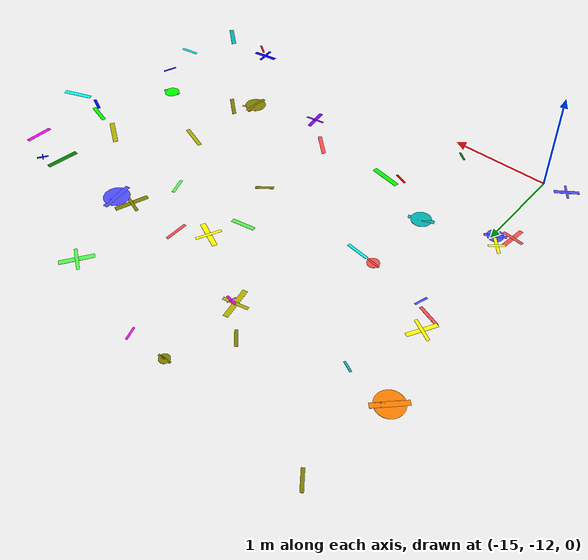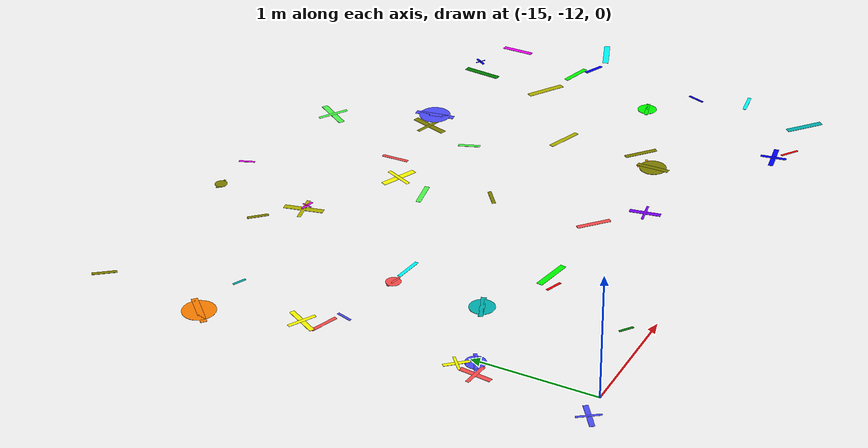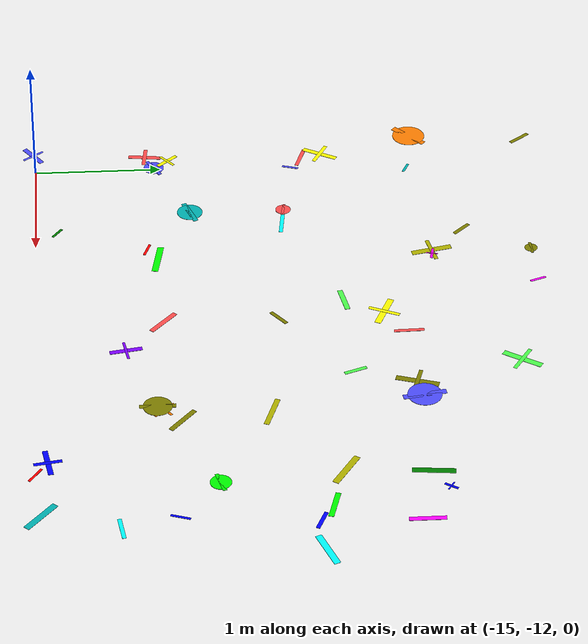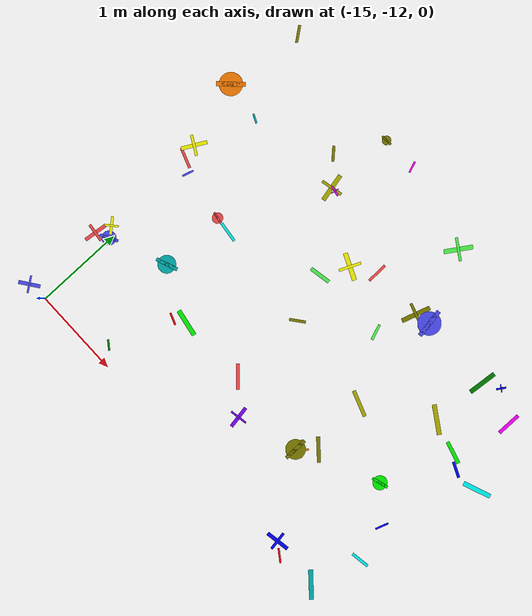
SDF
<sdf version="1.6">
 <world name="default">
  <model name="letter_T_21">
   <static>true</static>
   <pose>-15.23 -12.02 0.009 0 0 3.767</pose>
   <link name="link">
    <visual name="visual">
     <geometry><box><size>0.24 0.04 0.002</size></box></geometry>
     <material>
      <ambient>0.3 0.3 1.0 1</ambient>
      <diffuse>0.3 0.3 1.0 1</diffuse>
      <specular>0.1 0.1 0.1 1</specular>
     </material>
    </visual>
    <visual name="visual2">
     <pose>0 0 0.001 0 0 1.57</pose>
     <geometry><box><size>0.19 0.02 0.001</size></box></geometry>
     <material><ambient>0.3 0.3 1.0 1</ambient><diffuse>0.3 0.3 1.0 1</diffuse></material>
    </visual>
   </link>
  </model>
  <model name="letter_G_23">
   <static>true</static>
   <pose>-15.02 -11.05 0.003 0 0 0.506</pose>
   <link name="link">
    <visual name="visual">
     <geometry><box><size>0.21 0.03 0.002</size></box></geometry>
     <material>
      <ambient>0.3 0.3 1.0 1</ambient>
      <diffuse>0.3 0.3 1.0 1</diffuse>
      <specular>0.1 0.1 0.1 1</specular>
     </material>
    </visual>
    <visual name="visual2">
     <geometry><cylinder><radius>0.08</radius><length>0.002</length></cylinder></geometry>
     <material><ambient>0.3 0.3 1.0 1</ambient><diffuse>0.3 0.3 1.0 1</diffuse></material>
    </visual>
   </link>
  </model>
  <model name="letter_F_24">
   <static>true</static>
   <pose>-15.16 -11.12 0.011 0 0 1.458</pose>
   <link name="link">
    <visual name="visual">
     <geometry><box><size>0.26 0.04 0.002</size></box></geometry>
     <material>
      <ambient>1.0 0.3 0.3 1</ambient>
      <diffuse>1.0 0.3 0.3 1</diffuse>
      <specular>0.1 0.1 0.1 1</specular>
     </material>
    </visual>
    <visual name="visual2">
     <pose>0 0 0.001 0 0 1.57</pose>
     <geometry><box><size>0.21 0.03 0.001</size></box></geometry>
     <material><ambient>1.0 0.3 0.3 1</ambient><diffuse>1.0 0.3 0.3 1</diffuse></material>
    </visual>
   </link>
  </model>
  <model name="letter_A_25">
   <static>true</static>
   <pose>-15.10 -10.94 0.011 0 0 5.431</pose>
   <link name="link">
    <visual name="visual">
     <geometry><box><size>0.20 0.03 0.002</size></box></geometry>
     <material>
      <ambient>1.0 1.0 0.0 1</ambient>
      <diffuse>1.0 1.0 0.0 1</diffuse>
      <specular>0.1 0.1 0.1 1</specular>
     </material>
    </visual>
    <visual name="visual2">
     <pose>0 0 0.001 0 0 1.57</pose>
     <geometry><box><size>0.16 0.02 0.001</size></box></geometry>
     <material><ambient>1.0 1.0 0.0 1</ambient><diffuse>1.0 1.0 0.0 1</diffuse></material>
    </visual>
   </link>
  </model>
  <model name="letter_L_26">
   <static>true</static>
   <pose>-15.14 -9.70 0.007 0 0 4.216</pose>
   <link name="link">
    <visual name="visual">
     <geometry><box><size>0.29 0.04 0.002</size></box></geometry>
     <material>
      <ambient>1.0 1.0 0.0 1</ambient>
      <diffuse>1.0 1.0 0.0 1</diffuse>
      <specular>0.1 0.1 0.1 1</specular>
     </material>
    </visual>
    <visual name="visual2">
     <pose>0 0 0.001 0 0 1.57</pose>
     <geometry><box><size>0.23 0.03 0.001</size></box></geometry>
     <material><ambient>1.0 1.0 0.0 1</ambient><diffuse>1.0 1.0 0.0 1</diffuse></material>
    </visual>
   </link>
  </model>
  <model name="letter_Y_27">
   <static>true</static>
   <pose>-14.96 -9.95 0.011 0 0 4.426</pose>
   <link name="link">
    <visual name="visual">
     <geometry><box><size>0.13 0.02 0.002</size></box></geometry>
     <material>
      <ambient>0.3 0.3 1.0 1</ambient>
      <diffuse>0.3 0.3 1.0 1</diffuse>
      <specular>0.1 0.1 0.1 1</specular>
     </material>
    </visual>
   </link>
  </model>
  <model name="letter_K_28">
   <static>true</static>
   <pose>-15.10 -9.86 0.005 0 0 5.945</pose>
   <link name="link">
    <visual name="visual">
     <geometry><box><size>0.23 0.03 0.002</size></box></geometry>
     <material>
      <ambient>1.0 0.3 0.3 1</ambient>
      <diffuse>1.0 0.3 0.3 1</diffuse>
      <specular>0.1 0.1 0.1 1</specular>
     </material>
    </visual>
   </link>
  </model>
  <model name="letter_Y_29">
   <static>true</static>
   <pose>-14.91 -9.02 0.005 0 0 2.710</pose>
   <link name="link">
    <visual name="visual">
     <geometry><box><size>0.11 0.02 0.002</size></box></geometry>
     <material>
      <ambient>0.0 0.7 0.7 1</ambient>
      <diffuse>0.0 0.7 0.7 1</diffuse>
      <specular>0.1 0.1 0.1 1</specular>
     </material>
    </visual>
   </link>
  </model>
  <model name="letter_O_30">
   <static>true</static>
   <pose>-15.36 -8.96 0.003 0 0 0.801</pose>
   <link name="link">
    <visual name="visual">
     <geometry><box><size>0.32 0.05 0.002</size></box></geometry>
     <material>
      <ambient>1.0 0.5 0.0 1</ambient>
      <diffuse>1.0 0.5 0.0 1</diffuse>
      <specular>0.1 0.1 0.1 1</specular>
     </material>
    </visual>
    <visual name="visual2">
     <geometry><cylinder><radius>0.13</radius><length>0.002</length></cylinder></geometry>
     <material><ambient>1.0 0.5 0.0 1</ambient><diffuse>1.0 0.5 0.0 1</diffuse></material>
    </visual>
   </link>
  </model>
  <model name="letter_D_32">
   <static>true</static>
   <pose>-15.27 -8.06 0.009 0 0 2.228</pose>
   <link name="link">
    <visual name="visual">
     <geometry><box><size>0.19 0.03 0.002</size></box></geometry>
     <material>
      <ambient>0.5 0.5 0.0 1</ambient>
      <diffuse>0.5 0.5 0.0 1</diffuse>
      <specular>0.1 0.1 0.1 1</specular>
     </material>
    </visual>
   </link>
  </model>
  <model name="letter_Z_102">
   <static>true</static>
   <pose>-14.17 -11.83 0.008 0 0 2.502</pose>
   <link name="link">
    <visual name="visual">
     <geometry><box><size>0.12 0.02 0.002</size></box></geometry>
     <material>
      <ambient>0.0 0.5 0.0 1</ambient>
      <diffuse>0.0 0.5 0.0 1</diffuse>
      <specular>0.1 0.1 0.1 1</specular>
     </material>
    </visual>
   </link>
  </model>
  <model name="letter_Z_103">
   <static>true</static>
   <pose>-13.78 -11.05 0.012 0 0 6.109</pose>
   <link name="link">
    <visual name="visual">
     <geometry><box><size>0.31 0.05 0.002</size></box></geometry>
     <material>
      <ambient>0.0 1.0 0.0 1</ambient>
      <diffuse>0.0 1.0 0.0 1</diffuse>
      <specular>0.1 0.1 0.1 1</specular>
     </material>
    </visual>
   </link>
  </model>
  <model name="letter_M_104">
   <static>true</static>
   <pose>-13.91 -11.13 0.011 0 0 5.934</pose>
   <link name="link">
    <visual name="visual">
     <geometry><box><size>0.14 0.02 0.002</size></box></geometry>
     <material>
      <ambient>1.0 0.0 0.0 1</ambient>
      <diffuse>1.0 0.0 0.0 1</diffuse>
      <specular>0.1 0.1 0.1 1</specular>
     </material>
    </visual>
   </link>
  </model>
  <model name="letter_C_105">
   <static>true</static>
   <pose>-14.39 -10.78 0.010 0 0 3.511</pose>
   <link name="link">
    <visual name="visual">
     <geometry><box><size>0.25 0.04 0.002</size></box></geometry>
     <material>
      <ambient>0.0 0.7 0.7 1</ambient>
      <diffuse>0.0 0.7 0.7 1</diffuse>
      <specular>0.1 0.1 0.1 1</specular>
     </material>
    </visual>
    <visual name="visual2">
     <geometry><cylinder><radius>0.10</radius><length>0.002</length></cylinder></geometry>
     <material><ambient>0.0 0.7 0.7 1</ambient><diffuse>0.0 0.7 0.7 1</diffuse></material>
    </visual>
   </link>
  </model>
  <model name="letter_U_106">
   <static>true</static>
   <pose>-14.20 -10.06 0.012 0 0 3.020</pose>
   <link name="link">
    <visual name="visual">
     <geometry><box><size>0.23 0.03 0.002</size></box></geometry>
     <material>
      <ambient>0.0 1.0 1.0 1</ambient>
      <diffuse>0.0 1.0 1.0 1</diffuse>
      <specular>0.1 0.1 0.1 1</specular>
     </material>
    </visual>
   </link>
  </model>
  <model name="letter_C_107">
   <static>true</static>
   <pose>-14.39 -10.04 0.007 0 0 6.113</pose>
   <link name="link">
    <visual name="visual">
     <geometry><box><size>0.14 0.02 0.002</size></box></geometry>
     <material>
      <ambient>1.0 0.3 0.3 1</ambient>
      <diffuse>1.0 0.3 0.3 1</diffuse>
      <specular>0.1 0.1 0.1 1</specular>
     </material>
    </visual>
    <visual name="visual2">
     <geometry><cylinder><radius>0.06</radius><length>0.002</length></cylinder></geometry>
     <material><ambient>1.0 0.3 0.3 1</ambient><diffuse>1.0 0.3 0.3 1</diffuse></material>
    </visual>
   </link>
  </model>
  <model name="letter_F_108">
   <static>true</static>
   <pose>-13.80 -8.91 0.003 0 0 1.795</pose>
   <link name="link">
    <visual name="visual">
     <geometry><box><size>0.32 0.05 0.002</size></box></geometry>
     <material>
      <ambient>0.7 0.7 0.0 1</ambient>
      <diffuse>0.7 0.7 0.0 1</diffuse>
      <specular>0.1 0.1 0.1 1</specular>
     </material>
    </visual>
    <visual name="visual2">
     <pose>0 0 0.001 0 0 1.57</pose>
     <geometry><box><size>0.25 0.03 0.001</size></box></geometry>
     <material><ambient>0.7 0.7 0.0 1</ambient><diffuse>0.7 0.7 0.0 1</diffuse></material>
    </visual>
   </link>
  </model>
  <model name="letter_L_109">
   <static>true</static>
   <pose>-13.75 -8.91 0.006 0 0 6.090</pose>
   <link name="link">
    <visual name="visual">
     <geometry><box><size>0.12 0.02 0.002</size></box></geometry>
     <material>
      <ambient>1.0 0.0 1.0 1</ambient>
      <diffuse>1.0 0.0 1.0 1</diffuse>
      <specular>0.1 0.1 0.1 1</specular>
     </material>
    </visual>
    <visual name="visual2">
     <pose>0 0 0.001 0 0 1.57</pose>
     <geometry><box><size>0.09 0.01 0.001</size></box></geometry>
     <material><ambient>1.0 0.0 1.0 1</ambient><diffuse>1.0 0.0 1.0 1</diffuse></material>
    </visual>
   </link>
  </model>
  <model name="letter_J_110">
   <static>true</static>
   <pose>-14.06 -8.65 0.005 0 0 2.333</pose>
   <link name="link">
    <visual name="visual">
     <geometry><box><size>0.17 0.03 0.002</size></box></geometry>
     <material>
      <ambient>0.5 0.5 0.0 1</ambient>
      <diffuse>0.5 0.5 0.0 1</diffuse>
      <specular>0.1 0.1 0.1 1</specular>
     </material>
    </visual>
   </link>
  </model>
  <model name="letter_G_112">
   <static>true</static>
   <pose>-13.78 -8.13 0.008 0 0 0.063</pose>
   <link name="link">
    <visual name="visual">
     <geometry><box><size>0.13 0.02 0.002</size></box></geometry>
     <material>
      <ambient>0.5 0.5 0.0 1</ambient>
      <diffuse>0.5 0.5 0.0 1</diffuse>
      <specular>0.1 0.1 0.1 1</specular>
     </material>
    </visual>
    <visual name="visual2">
     <geometry><cylinder><radius>0.05</radius><length>0.002</length></cylinder></geometry>
     <material><ambient>0.5 0.5 0.0 1</ambient><diffuse>0.5 0.5 0.0 1</diffuse></material>
    </visual>
   </link>
  </model>
  <model name="letter_F_177">
   <static>true</static>
   <pose>-12.65 -11.32 0.012 0 0 1.744</pose>
   <link name="link">
    <visual name="visual">
     <geometry><box><size>0.25 0.04 0.002</size></box></geometry>
     <material>
      <ambient>0.5 0.0 1.0 1</ambient>
      <diffuse>0.5 0.0 1.0 1</diffuse>
      <specular>0.1 0.1 0.1 1</specular>
     </material>
    </visual>
    <visual name="visual2">
     <pose>0 0 0.001 0 0 1.57</pose>
     <geometry><box><size>0.20 0.02 0.001</size></box></geometry>
     <material><ambient>0.5 0.0 1.0 1</ambient><diffuse>0.5 0.0 1.0 1</diffuse></material>
    </visual>
   </link>
  </model>
  <model name="letter_D_178">
   <static>true</static>
   <pose>-12.98 -11.03 0.013 0 0 2.410</pose>
   <link name="link">
    <visual name="visual">
     <geometry><box><size>0.28 0.04 0.002</size></box></geometry>
     <material>
      <ambient>1.0 0.3 0.3 1</ambient>
      <diffuse>1.0 0.3 0.3 1</diffuse>
      <specular>0.1 0.1 0.1 1</specular>
     </material>
    </visual>
   </link>
  </model>
  <model name="letter_S_179">
   <static>true</static>
   <pose>-13.19 -9.64 0.009 0 0 0.189</pose>
   <link name="link">
    <visual name="visual">
     <geometry><box><size>0.24 0.04 0.002</size></box></geometry>
     <material>
      <ambient>0.3 1.0 0.3 1</ambient>
      <diffuse>0.3 1.0 0.3 1</diffuse>
      <specular>0.1 0.1 0.1 1</specular>
     </material>
    </visual>
   </link>
  </model>
  <model name="letter_D_180">
   <static>true</static>
   <pose>-12.99 -10.15 0.012 0 0 3.810</pose>
   <link name="link">
    <visual name="visual">
     <geometry><box><size>0.18 0.03 0.002</size></box></geometry>
     <material>
      <ambient>0.5 0.5 0.0 1</ambient>
      <diffuse>0.5 0.5 0.0 1</diffuse>
      <specular>0.1 0.1 0.1 1</specular>
     </material>
    </visual>
   </link>
  </model>
  <model name="letter_B_181">
   <static>true</static>
   <pose>-12.79 -9.17 0.007 0 0 1.597</pose>
   <link name="link">
    <visual name="visual">
     <geometry><box><size>0.23 0.03 0.002</size></box></geometry>
     <material>
      <ambient>1.0 0.3 0.3 1</ambient>
      <diffuse>1.0 0.3 0.3 1</diffuse>
      <specular>0.1 0.1 0.1 1</specular>
     </material>
    </visual>
   </link>
  </model>
  <model name="letter_E_182">
   <static>true</static>
   <pose>-13.04 -9.34 0.003 0 0 5.870</pose>
   <link name="link">
    <visual name="visual">
     <geometry><box><size>0.31 0.05 0.002</size></box></geometry>
     <material>
      <ambient>1.0 1.0 0.0 1</ambient>
      <diffuse>1.0 1.0 0.0 1</diffuse>
      <specular>0.1 0.1 0.1 1</specular>
     </material>
    </visual>
    <visual name="visual2">
     <pose>0 0 0.001 0 0 1.57</pose>
     <geometry><box><size>0.25 0.03 0.001</size></box></geometry>
     <material><ambient>1.0 1.0 0.0 1</ambient><diffuse>1.0 1.0 0.0 1</diffuse></material>
    </visual>
   </link>
  </model>
  <model name="letter_D_183">
   <static>true</static>
   <pose>-13.38 -8.12 0.004 0 0 1.930</pose>
   <link name="link">
    <visual name="visual">
     <geometry><box><size>0.13 0.02 0.002</size></box></geometry>
     <material>
      <ambient>1.0 0.0 1.0 1</ambient>
      <diffuse>1.0 0.0 1.0 1</diffuse>
      <specular>0.1 0.1 0.1 1</specular>
     </material>
    </visual>
   </link>
  </model>
  <model name="letter_V_254">
   <static>true</static>
   <pose>-11.81 -10.92 0.010 0 0 2.435</pose>
   <link name="link">
    <visual name="visual">
     <geometry><box><size>0.28 0.04 0.002</size></box></geometry>
     <material>
      <ambient>0.5 0.5 0.0 1</ambient>
      <diffuse>0.5 0.5 0.0 1</diffuse>
      <specular>0.1 0.1 0.1 1</specular>
     </material>
    </visual>
   </link>
  </model>
  <model name="letter_O_255">
   <static>true</static>
   <pose>-11.98 -11.10 0.011 0 0 4.723</pose>
   <link name="link">
    <visual name="visual">
     <geometry><box><size>0.27 0.04 0.002</size></box></geometry>
     <material>
      <ambient>0.5 0.5 0.0 1</ambient>
      <diffuse>0.5 0.5 0.0 1</diffuse>
      <specular>0.1 0.1 0.1 1</specular>
     </material>
    </visual>
    <visual name="visual2">
     <geometry><cylinder><radius>0.11</radius><length>0.002</length></cylinder></geometry>
     <material><ambient>0.5 0.5 0.0 1</ambient><diffuse>0.5 0.5 0.0 1</diffuse></material>
    </visual>
   </link>
  </model>
  <model name="letter_L_256">
   <static>true</static>
   <pose>-11.94 -11.05 0.005 0 0 5.427</pose>
   <link name="link">
    <visual name="visual">
     <geometry><box><size>0.20 0.03 0.002</size></box></geometry>
     <material>
      <ambient>1.0 0.5 0.0 1</ambient>
      <diffuse>1.0 0.5 0.0 1</diffuse>
      <specular>0.1 0.1 0.1 1</specular>
     </material>
    </visual>
    <visual name="visual2">
     <pose>0 0 0.001 0 0 1.57</pose>
     <geometry><box><size>0.16 0.02 0.001</size></box></geometry>
     <material><ambient>1.0 0.5 0.0 1</ambient><diffuse>1.0 0.5 0.0 1</diffuse></material>
    </visual>
   </link>
  </model>
  <model name="letter_S_257">
   <static>true</static>
   <pose>-12.33 -9.61 0.005 0 0 1.931</pose>
   <link name="link">
    <visual name="visual">
     <geometry><box><size>0.18 0.03 0.002</size></box></geometry>
     <material>
      <ambient>0.3 1.0 0.3 1</ambient>
      <diffuse>0.3 1.0 0.3 1</diffuse>
      <specular>0.1 0.1 0.1 1</specular>
     </material>
    </visual>
   </link>
  </model>
  <model name="letter_B_258">
   <static>true</static>
   <pose>-11.88 -10.26 0.003 0 0 5.948</pose>
   <link name="link">
    <visual name="visual">
     <geometry><box><size>0.30 0.04 0.002</size></box></geometry>
     <material>
      <ambient>0.7 0.7 0.0 1</ambient>
      <diffuse>0.7 0.7 0.0 1</diffuse>
      <specular>0.1 0.1 0.1 1</specular>
     </material>
    </visual>
   </link>
  </model>
  <model name="letter_T_259">
   <static>true</static>
   <pose>-12.18 -9.16 0.004 0 0 1.267</pose>
   <link name="link">
    <visual name="visual">
     <geometry><box><size>0.33 0.05 0.002</size></box></geometry>
     <material>
      <ambient>0.5 0.5 0.0 1</ambient>
      <diffuse>0.5 0.5 0.0 1</diffuse>
      <specular>0.1 0.1 0.1 1</specular>
     </material>
    </visual>
    <visual name="visual2">
     <pose>0 0 0.001 0 0 1.57</pose>
     <geometry><box><size>0.26 0.03 0.001</size></box></geometry>
     <material><ambient>0.5 0.5 0.0 1</ambient><diffuse>0.5 0.5 0.0 1</diffuse></material>
    </visual>
   </link>
  </model>
  <model name="letter_Q_260">
   <static>true</static>
   <pose>-12.01 -9.12 0.013 0 0 4.877</pose>
   <link name="link">
    <visual name="visual">
     <geometry><box><size>0.33 0.05 0.002</size></box></geometry>
     <material>
      <ambient>0.3 0.3 1.0 1</ambient>
      <diffuse>0.3 0.3 1.0 1</diffuse>
      <specular>0.1 0.1 0.1 1</specular>
     </material>
    </visual>
    <visual name="visual2">
     <geometry><cylinder><radius>0.13</radius><length>0.002</length></cylinder></geometry>
     <material><ambient>0.3 0.3 1.0 1</ambient><diffuse>0.3 0.3 1.0 1</diffuse></material>
    </visual>
   </link>
  </model>
  <model name="letter_T_261">
   <static>true</static>
   <pose>-12.39 -8.35 0.012 0 0 0.999</pose>
   <link name="link">
    <visual name="visual">
     <geometry><box><size>0.32 0.05 0.002</size></box></geometry>
     <material>
      <ambient>0.3 1.0 0.3 1</ambient>
      <diffuse>0.3 1.0 0.3 1</diffuse>
      <specular>0.1 0.1 0.1 1</specular>
     </material>
    </visual>
    <visual name="visual2">
     <pose>0 0 0.001 0 0 1.57</pose>
     <geometry><box><size>0.26 0.03 0.001</size></box></geometry>
     <material><ambient>0.3 1.0 0.3 1</ambient><diffuse>0.3 1.0 0.3 1</diffuse></material>
    </visual>
   </link>
  </model>
  <model name="letter_B_325">
   <static>true</static>
   <pose>-10.79 -11.96 0.013 0 0 2.434</pose>
   <link name="link">
    <visual name="visual">
     <geometry><box><size>0.32 0.05 0.002</size></box></geometry>
     <material>
      <ambient>0.0 0.7 0.7 1</ambient>
      <diffuse>0.0 0.7 0.7 1</diffuse>
      <specular>0.1 0.1 0.1 1</specular>
     </material>
    </visual>
   </link>
  </model>
  <model name="letter_J_326">
   <static>true</static>
   <pose>-11.25 -12.00 0.008 0 0 2.530</pose>
   <link name="link">
    <visual name="visual">
     <geometry><box><size>0.16 0.02 0.002</size></box></geometry>
     <material>
      <ambient>1.0 0.0 0.0 1</ambient>
      <diffuse>1.0 0.0 0.0 1</diffuse>
      <specular>0.1 0.1 0.1 1</specular>
     </material>
    </visual>
   </link>
  </model>
  <model name="letter_A_327">
   <static>true</static>
   <pose>-11.38 -11.91 0.009 0 0 3.310</pose>
   <link name="link">
    <visual name="visual">
     <geometry><box><size>0.27 0.04 0.002</size></box></geometry>
     <material>
      <ambient>0.0 0.0 1.0 1</ambient>
      <diffuse>0.0 0.0 1.0 1</diffuse>
      <specular>0.1 0.1 0.1 1</specular>
     </material>
    </visual>
    <visual name="visual2">
     <pose>0 0 0.001 0 0 1.57</pose>
     <geometry><box><size>0.21 0.03 0.001</size></box></geometry>
     <material><ambient>0.0 0.0 1.0 1</ambient><diffuse>0.0 0.0 1.0 1</diffuse></material>
    </visual>
   </link>
  </model>
  <model name="letter_Z_328">
   <static>true</static>
   <pose>-10.63 -11.39 0.012 0 0 3.294</pose>
   <link name="link">
    <visual name="visual">
     <geometry><box><size>0.21 0.03 0.002</size></box></geometry>
     <material>
      <ambient>0.0 1.0 1.0 1</ambient>
      <diffuse>0.0 1.0 1.0 1</diffuse>
      <specular>0.1 0.1 0.1 1</specular>
     </material>
    </visual>
   </link>
  </model>
  <model name="letter_C_329">
   <static>true</static>
   <pose>-11.10 -10.67 0.008 0 0 0.286</pose>
   <link name="link">
    <visual name="visual">
     <geometry><box><size>0.19 0.03 0.002</size></box></geometry>
     <material>
      <ambient>0.0 1.0 0.0 1</ambient>
      <diffuse>0.0 1.0 0.0 1</diffuse>
      <specular>0.1 0.1 0.1 1</specular>
     </material>
    </visual>
    <visual name="visual2">
     <geometry><cylinder><radius>0.08</radius><length>0.002</length></cylinder></geometry>
     <material><ambient>0.0 1.0 0.0 1</ambient><diffuse>0.0 1.0 0.0 1</diffuse></material>
    </visual>
   </link>
  </model>
  <model name="letter_V_330">
   <static>true</static>
   <pose>-10.74 -10.97 0.006 0 0 1.248</pose>
   <link name="link">
    <visual name="visual">
     <geometry><box><size>0.15 0.02 0.002</size></box></geometry>
     <material>
      <ambient>0.0 0.0 1.0 1</ambient>
      <diffuse>0.0 0.0 1.0 1</diffuse>
      <specular>0.1 0.1 0.1 1</specular>
     </material>
    </visual>
   </link>
  </model>
  <model name="letter_M_331">
   <static>true</static>
   <pose>-10.65 -9.97 0.007 0 0 2.727</pose>
   <link name="link">
    <visual name="visual">
     <geometry><box><size>0.18 0.03 0.002</size></box></geometry>
     <material>
      <ambient>0.0 0.0 1.0 1</ambient>
      <diffuse>0.0 0.0 1.0 1</diffuse>
      <specular>0.1 0.1 0.1 1</specular>
     </material>
    </visual>
   </link>
  </model>
  <model name="letter_X_332">
   <static>true</static>
   <pose>-11.19 -9.76 0.008 0 0 2.570</pose>
   <link name="link">
    <visual name="visual">
     <geometry><box><size>0.33 0.05 0.002</size></box></geometry>
     <material>
      <ambient>0.7 0.7 0.0 1</ambient>
      <diffuse>0.7 0.7 0.0 1</diffuse>
      <specular>0.1 0.1 0.1 1</specular>
     </material>
    </visual>
   </link>
  </model>
  <model name="letter_Z_333">
   <static>true</static>
   <pose>-10.81 -9.87 0.009 0 0 2.873</pose>
   <link name="link">
    <visual name="visual">
     <geometry><box><size>0.26 0.04 0.002</size></box></geometry>
     <material>
      <ambient>0.0 1.0 0.0 1</ambient>
      <diffuse>0.0 1.0 0.0 1</diffuse>
      <specular>0.1 0.1 0.1 1</specular>
     </material>
    </visual>
   </link>
  </model>
  <model name="letter_N_334">
   <static>true</static>
   <pose>-10.63 -9.22 0.007 0 0 1.571</pose>
   <link name="link">
    <visual name="visual">
     <geometry><box><size>0.27 0.04 0.002</size></box></geometry>
     <material>
      <ambient>1.0 0.0 1.0 1</ambient>
      <diffuse>1.0 0.0 1.0 1</diffuse>
      <specular>0.1 0.1 0.1 1</specular>
     </material>
    </visual>
   </link>
  </model>
  <model name="letter_L_335">
   <static>true</static>
   <pose>-10.97 -9.02 0.008 0 0 4.144</pose>
   <link name="link">
    <visual name="visual">
     <geometry><box><size>0.11 0.02 0.002</size></box></geometry>
     <material>
      <ambient>0.0 0.0 1.0 1</ambient>
      <diffuse>0.0 0.0 1.0 1</diffuse>
      <specular>0.1 0.1 0.1 1</specular>
     </material>
    </visual>
    <visual name="visual2">
     <pose>0 0 0.001 0 0 1.57</pose>
     <geometry><box><size>0.09 0.01 0.001</size></box></geometry>
     <material><ambient>0.0 0.0 1.0 1</ambient><diffuse>0.0 0.0 1.0 1</diffuse></material>
    </visual>
   </link>
  </model>
  <model name="letter_U_336">
   <static>true</static>
   <pose>-11.15 -9.13 0.006 0 0 4.622</pose>
   <link name="link">
    <visual name="visual">
     <geometry><box><size>0.32 0.05 0.002</size></box></geometry>
     <material>
      <ambient>0.0 0.5 0.0 1</ambient>
      <diffuse>0.0 0.5 0.0 1</diffuse>
      <specular>0.1 0.1 0.1 1</specular>
     </material>
    </visual>
   </link>
  </model>
  <model name="letter_D_411">
   <static>true</static>
   <pose>-10.34 -9.95 0.005 0 0 3.515</pose>
   <link name="link">
    <visual name="visual">
     <geometry><box><size>0.32 0.05 0.002</size></box></geometry>
     <material>
      <ambient>0.0 1.0 1.0 1</ambient>
      <diffuse>0.0 1.0 1.0 1</diffuse>
      <specular>0.1 0.1 0.1 1</specular>
     </material>
    </visual>
   </link>
  </model>
 </world>
</sdf>
